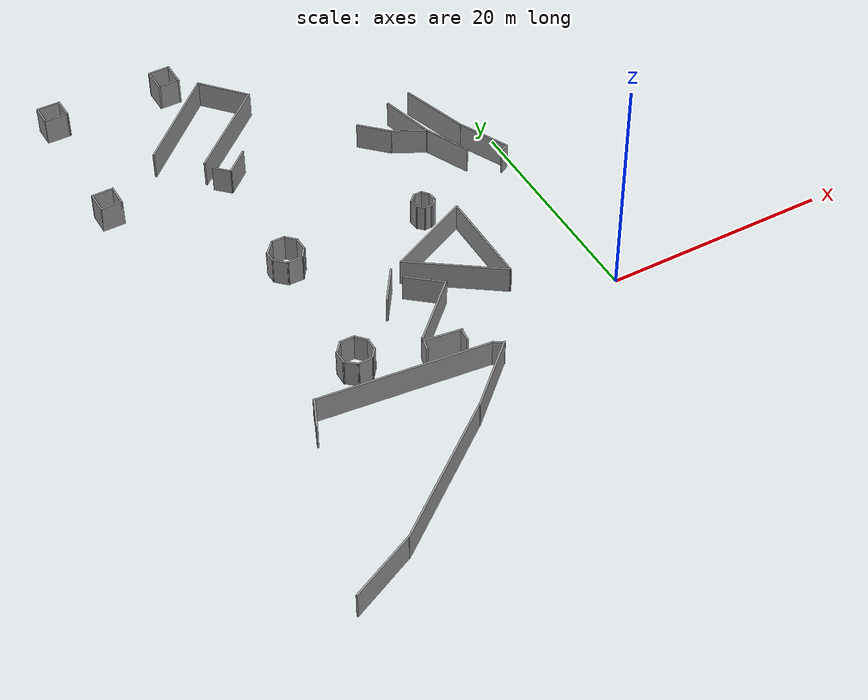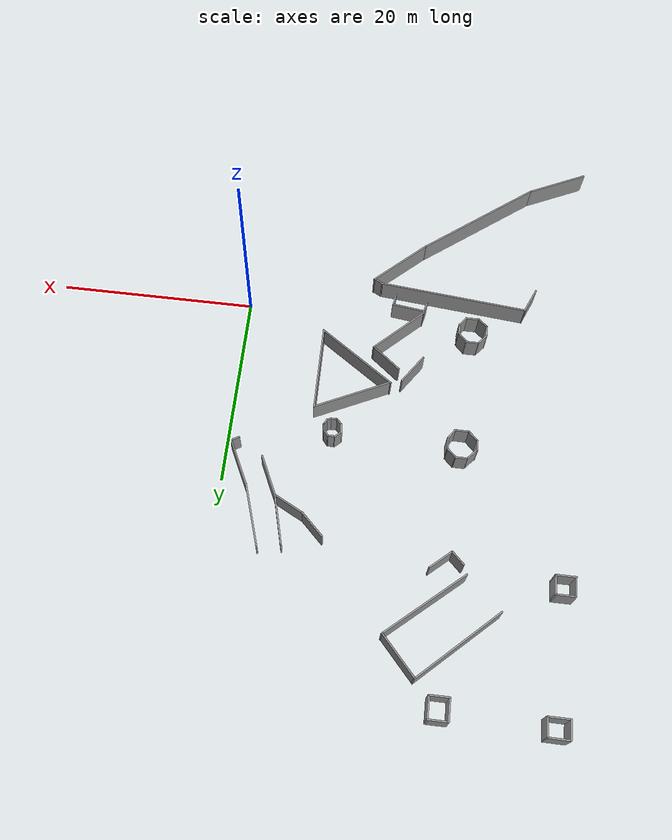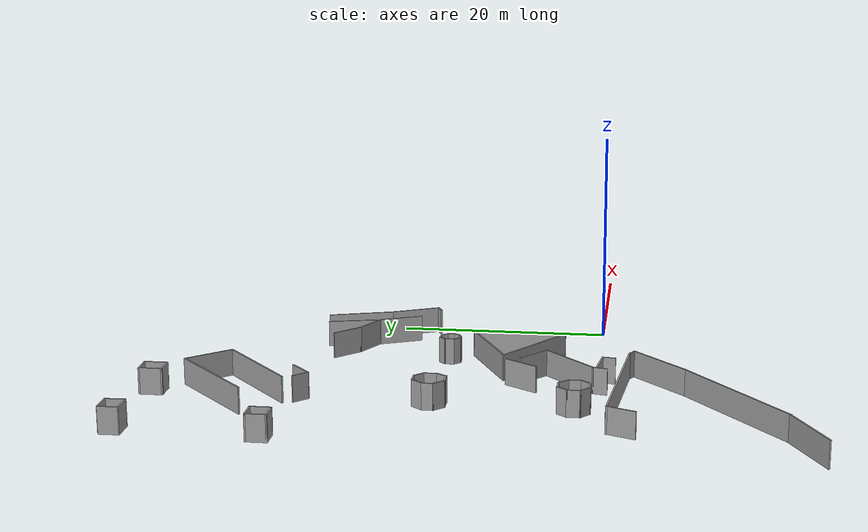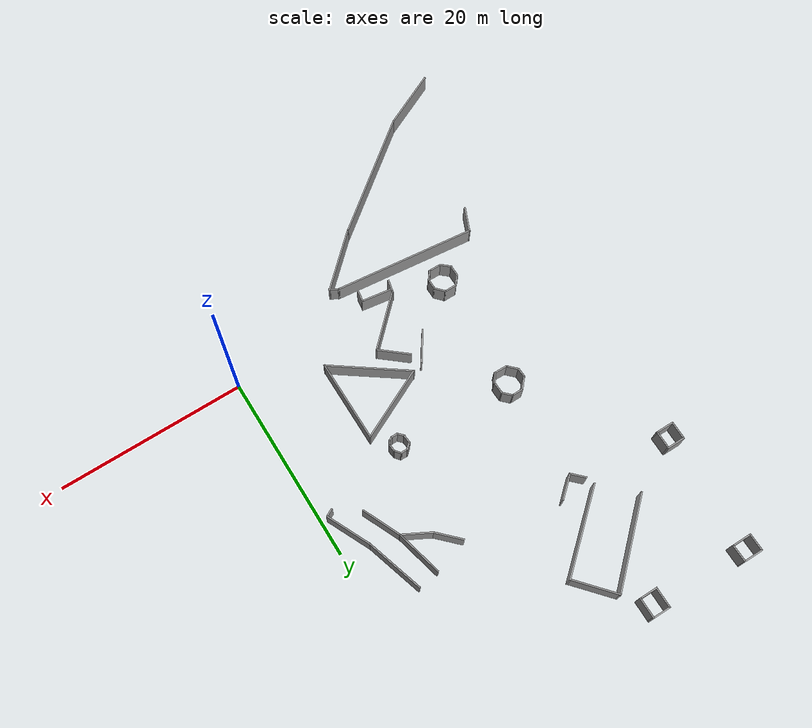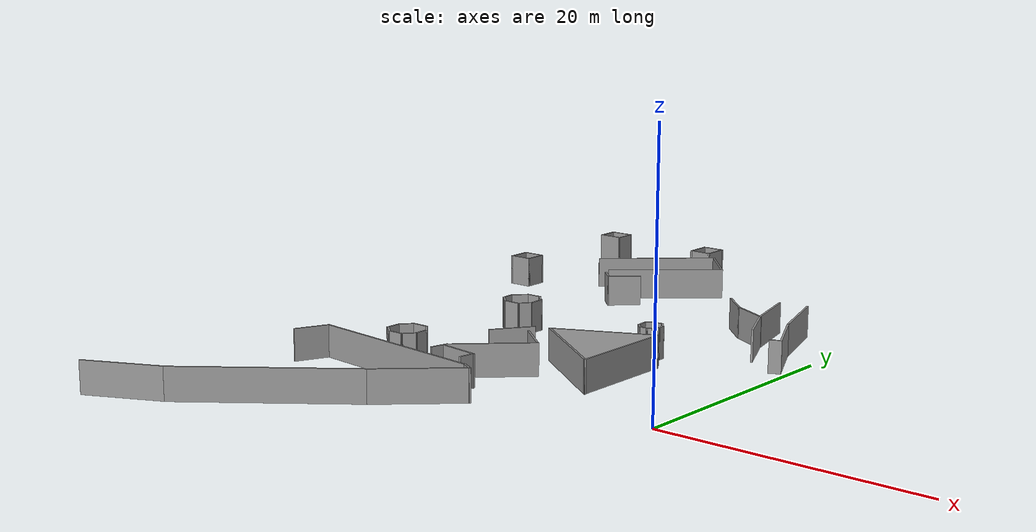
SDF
<sdf version="1.6">
 <model name="Area_B">
  <pose>-32.1242 10.8214 0 0 -0 0</pose>
  <link name="Wall_127">
   <collision name="Wall_127_Collision">
    <geometry><box><size>6.48208 0.15 2.5</size></box></geometry>
    <pose>0 0 1.25 0 -0 0</pose>
   </collision>
   <visual name="Wall_127_Visual">
    <pose>0 0 1.25 0 -0 0</pose>
    <geometry><box><size>6.48208 0.15 2.5</size></box></geometry>
    <material>
     <script><uri>file://media/materials/scripts/gazebo.material</uri><name>Gazebo/Grey</name></script>
     <ambient>1 1 1 1</ambient>
    </material>
    <meta><layer>0</layer></meta>
   </visual>
   <pose>0.452913 -28.8669 0 0 -0 0.451121</pose>
  </link>
  <link name="Wall_128">
   <collision name="Wall_128_Collision">
    <geometry><box><size>14.028 0.15 2.5</size></box></geometry>
    <pose>0 0 1.25 0 -0 0</pose>
   </collision>
   <visual name="Wall_128_Visual">
    <pose>0 0 1.25 0 -0 0</pose>
    <geometry><box><size>14.028 0.15 2.5</size></box></geometry>
    <material>
     <script><uri>file://media/materials/scripts/gazebo.material</uri><name>Gazebo/Grey</name></script>
     <ambient>1 1 1 1</ambient>
    </material>
    <meta><layer>0</layer></meta>
   </visual>
   <pose>8.76594 -23.2328 0 0 -0 0.664139</pose>
  </link>
  <link name="Wall_129">
   <collision name="Wall_129_Collision">
    <geometry><box><size>7.08355 0.15 2.5</size></box></geometry>
    <pose>0 0 1.25 0 -0 0</pose>
   </collision>
   <visual name="Wall_129_Visual">
    <pose>0 0 1.25 0 -0 0</pose>
    <geometry><box><size>7.08355 0.15 2.5</size></box></geometry>
    <material>
     <script><uri>file://media/materials/scripts/gazebo.material</uri><name>Gazebo/Grey</name></script>
     <ambient>1 1 1 1</ambient>
    </material>
    <meta><layer>0</layer></meta>
   </visual>
   <pose>16.7843 -16.5789 0 0 -0 0.755438</pose>
  </link>
  <link name="Wall_130">
   <collision name="Wall_130_Collision">
    <geometry><box><size>1.1013 0.15 2.5</size></box></geometry>
    <pose>0 0 1.25 0 -0 0</pose>
   </collision>
   <visual name="Wall_130_Visual">
    <pose>0 0 1.25 0 -0 0</pose>
    <geometry><box><size>1.1013 0.15 2.5</size></box></geometry>
    <material>
     <script><uri>file://media/materials/scripts/gazebo.material</uri><name>Gazebo/Grey</name></script>
     <ambient>1 1 1 1</ambient>
    </material>
    <meta><layer>0</layer></meta>
   </visual>
   <pose>18.8914 -14.0032 0 0 -0 2.63826</pose>
  </link>
  <link name="Wall_131">
   <collision name="Wall_131_Collision">
    <geometry><box><size>15.2444 0.15 2.5</size></box></geometry>
    <pose>0 0 1.25 0 -0 0</pose>
   </collision>
   <visual name="Wall_131_Visual">
    <pose>0 0 1.25 0 -0 0</pose>
    <geometry><box><size>15.2444 0.15 2.5</size></box></geometry>
    <material>
     <script><uri>file://media/materials/scripts/gazebo.material</uri><name>Gazebo/Grey</name></script>
     <ambient>1 1 1 1</ambient>
    </material>
    <meta><layer>0</layer></meta>
   </visual>
   <pose>10.9971 -13.0073 0 0 -0 3.03986</pose>
  </link>
  <link name="Wall_132">
   <collision name="Wall_132_Collision">
    <geometry><box><size>2.83891 0.15 2.5</size></box></geometry>
    <pose>0 0 1.25 0 -0 0</pose>
   </collision>
   <visual name="Wall_132_Visual">
    <pose>0 0 1.25 0 -0 0</pose>
    <geometry><box><size>2.83891 0.15 2.5</size></box></geometry>
    <material>
     <script><uri>file://media/materials/scripts/gazebo.material</uri><name>Gazebo/Grey</name></script>
     <ambient>1 1 1 1</ambient>
    </material>
    <meta><layer>0</layer></meta>
   </visual>
   <pose>2.98945 -13.4764 0 0 -0 -1.97606</pose>
  </link>
  <link name="Wall_144">
   <collision name="Wall_144_Collision">
    <geometry><box><size>3.57797 0.15 2.5</size></box></geometry>
    <pose>0 0 1.25 0 -0 0</pose>
   </collision>
   <visual name="Wall_144_Visual">
    <pose>0 0 1.25 0 -0 0</pose>
    <geometry><box><size>3.57797 0.15 2.5</size></box></geometry>
    <material>
     <script><uri>file://media/materials/scripts/gazebo.material</uri><name>Gazebo/Grey</name></script>
     <ambient>1 1 1 1</ambient>
    </material>
    <meta><layer>0</layer></meta>
   </visual>
   <pose>14.5292 -4.06296 0 0 -0 -2.1652</pose>
  </link>
  <link name="Wall_147">
   <collision name="Wall_147_Collision">
    <geometry><box><size>3.61382 0.15 2.5</size></box></geometry>
    <pose>0 0 1.25 0 -0 0</pose>
   </collision>
   <visual name="Wall_147_Visual">
    <pose>0 0 1.25 0 -0 0</pose>
    <geometry><box><size>3.61382 0.15 2.5</size></box></geometry>
    <material>
     <script><uri>file://media/materials/scripts/gazebo.material</uri><name>Gazebo/Grey</name></script>
     <ambient>1 1 1 1</ambient>
    </material>
    <meta><layer>0</layer></meta>
   </visual>
   <pose>17.2819 -5.0017 0 0 -0 -0.69159</pose>
  </link>
  <link name="Wall_148">
   <collision name="Wall_148_Collision">
    <geometry><box><size>6.69557 0.15 2.5</size></box></geometry>
    <pose>0 0 1.25 0 -0 0</pose>
   </collision>
   <visual name="Wall_148_Visual">
    <pose>0 0 1.25 0 -0 0</pose>
    <geometry><box><size>6.69557 0.15 2.5</size></box></geometry>
    <material>
     <script><uri>file://media/materials/scripts/gazebo.material</uri><name>Gazebo/Grey</name></script>
     <ambient>1 1 1 1</ambient>
    </material>
    <meta><layer>0</layer></meta>
   </visual>
   <pose>16.2943 -8.3819 0 0 -0 -2.37272</pose>
  </link>
  <link name="Wall_149">
   <collision name="Wall_149_Collision">
    <geometry><box><size>1.4258 0.15 2.5</size></box></geometry>
    <pose>0 0 1.25 0 -0 0</pose>
   </collision>
   <visual name="Wall_149_Visual">
    <pose>0 0 1.25 0 -0 0</pose>
    <geometry><box><size>1.4258 0.15 2.5</size></box></geometry>
    <material>
     <script><uri>file://media/materials/scripts/gazebo.material</uri><name>Gazebo/Grey</name></script>
     <ambient>1 1 1 1</ambient>
    </material>
    <meta><layer>0</layer></meta>
   </visual>
   <pose>13.7981 -11.2484 0 0 -0 -1.79868</pose>
  </link>
  <link name="Wall_154">
   <collision name="Wall_154_Collision">
    <geometry><box><size>3.35758 0.15 2.5</size></box></geometry>
    <pose>0 0 1.25 0 -0 0</pose>
   </collision>
   <visual name="Wall_154_Visual">
    <pose>0 0 1.25 0 -0 0</pose>
    <geometry><box><size>3.35758 0.15 2.5</size></box></geometry>
    <material>
     <script><uri>file://media/materials/scripts/gazebo.material</uri><name>Gazebo/Grey</name></script>
     <ambient>1 1 1 1</ambient>
    </material>
    <meta><layer>0</layer></meta>
   </visual>
   <pose>15.5179 -11.1505 0 0 -0 -0.136116</pose>
  </link>
  <link name="Wall_155">
   <collision name="Wall_155_Collision">
    <geometry><box><size>1.2865 0.15 2.5</size></box></geometry>
    <pose>0 0 1.25 0 -0 0</pose>
   </collision>
   <visual name="Wall_155_Visual">
    <pose>0 0 1.25 0 -0 0</pose>
    <geometry><box><size>1.2865 0.15 2.5</size></box></geometry>
    <material>
     <script><uri>file://media/materials/scripts/gazebo.material</uri><name>Gazebo/Grey</name></script>
     <ambient>1 1 1 1</ambient>
    </material>
    <meta><layer>0</layer></meta>
   </visual>
   <pose>17.0028 -11.9316 0 0 -0 -1.70058</pose>
  </link>
  <link name="Wall_158">
   <collision name="Wall_158_Collision">
    <geometry><box><size>8.1356 0.15 2.5</size></box></geometry>
    <pose>0 0 1.25 0 -0 0</pose>
   </collision>
   <visual name="Wall_158_Visual">
    <pose>0 0 1.25 0 -0 0</pose>
    <geometry><box><size>8.1356 0.15 2.5</size></box></geometry>
    <material>
     <script><uri>file://media/materials/scripts/gazebo.material</uri><name>Gazebo/Grey</name></script>
     <ambient>1 1 1 1</ambient>
    </material>
    <meta><layer>0</layer></meta>
   </visual>
   <pose>20.3182 -0.500974 0 0 -0 0.452021</pose>
  </link>
  <link name="Wall_159">
   <collision name="Wall_159_Collision">
    <geometry><box><size>8.83026 0.15 2.5</size></box></geometry>
    <pose>0 0 1.25 0 -0 0</pose>
   </collision>
   <visual name="Wall_159_Visual">
    <pose>0 0 1.25 0 -0 0</pose>
    <geometry><box><size>8.83026 0.15 2.5</size></box></geometry>
    <material>
     <script><uri>file://media/materials/scripts/gazebo.material</uri><name>Gazebo/Grey</name></script>
     <ambient>1 1 1 1</ambient>
    </material>
    <meta><layer>0</layer></meta>
   </visual>
   <pose>23.9185 -3.11471 0 0 -0 -1.56878</pose>
  </link>
  <link name="Wall_160">
   <collision name="Wall_160_Collision">
    <geometry><box><size>9.1362 0.15 2.5</size></box></geometry>
    <pose>0 0 1.25 0 -0 0</pose>
   </collision>
   <visual name="Wall_160_Visual">
    <pose>0 0 1.25 0 -0 0</pose>
    <geometry><box><size>9.1362 0.15 2.5</size></box></geometry>
    <material>
     <script><uri>file://media/materials/scripts/gazebo.material</uri><name>Gazebo/Grey</name></script>
     <ambient>1 1 1 1</ambient>
    </material>
    <meta><layer>0</layer></meta>
   </visual>
   <pose>20.2844 -4.84905 0 0 -0 2.52292</pose>
  </link>
  <link name="Wall_192">
   <collision name="Wall_192_Collision">
    <geometry><box><size>1.33063 0.15 2.5</size></box></geometry>
    <pose>0 0 1.25 0 -0 0</pose>
   </collision>
   <visual name="Wall_192_Visual">
    <pose>0 0 1.25 0 -0 0</pose>
    <geometry><box><size>1.33063 0.15 2.5</size></box></geometry>
    <material>
     <script><uri>file://media/materials/scripts/gazebo.material</uri><name>Gazebo/Grey</name></script>
     <ambient>1 1 1 1</ambient>
    </material>
    <meta><layer>0</layer></meta>
   </visual>
   <pose>8.74463 -7.81763 0 0 -0 0</pose>
  </link>
  <link name="Wall_193">
   <collision name="Wall_193_Collision">
    <geometry><box><size>1.31589 0.15 2.5</size></box></geometry>
    <pose>0 0 1.25 0 -0 0</pose>
   </collision>
   <visual name="Wall_193_Visual">
    <pose>0 0 1.25 0 -0 0</pose>
    <geometry><box><size>1.31589 0.15 2.5</size></box></geometry>
    <material>
     <script><uri>file://media/materials/scripts/gazebo.material</uri><name>Gazebo/Grey</name></script>
     <ambient>1 1 1 1</ambient>
    </material>
    <meta><layer>0</layer></meta>
   </visual>
   <pose>9.7317 -8.26476 0 0 -0 -0.822003</pose>
  </link>
  <link name="Wall_194">
   <collision name="Wall_194_Collision">
    <geometry><box><size>1.20977 0.15 2.5</size></box></geometry>
    <pose>0 0 1.25 0 -0 0</pose>
   </collision>
   <visual name="Wall_194_Visual">
    <pose>0 0 1.25 0 -0 0</pose>
    <geometry><box><size>1.20977 0.15 2.5</size></box></geometry>
    <material>
     <script><uri>file://media/materials/scripts/gazebo.material</uri><name>Gazebo/Grey</name></script>
     <ambient>1 1 1 1</ambient>
    </material>
    <meta><layer>0</layer></meta>
   </visual>
   <pose>10.1084 -9.22166 0 0 -0 -1.5708</pose>
  </link>
  <link name="Wall_195">
   <collision name="Wall_195_Collision">
    <geometry><box><size>1.1993 0.15 2.5</size></box></geometry>
    <pose>0 0 1.25 0 -0 0</pose>
   </collision>
   <visual name="Wall_195_Visual">
    <pose>0 0 1.25 0 -0 0</pose>
    <geometry><box><size>1.1993 0.15 2.5</size></box></geometry>
    <material>
     <script><uri>file://media/materials/scripts/gazebo.material</uri><name>Gazebo/Grey</name></script>
     <ambient>1 1 1 1</ambient>
    </material>
    <meta><layer>0</layer></meta>
   </visual>
   <pose>9.77986 -10.1807 0 0 -0 -2.24755</pose>
  </link>
  <link name="Wall_196">
   <collision name="Wall_196_Collision">
    <geometry><box><size>1.3908 0.15 2.5</size></box></geometry>
    <pose>0 0 1.25 0 -0 0</pose>
   </collision>
   <visual name="Wall_196_Visual">
    <pose>0 0 1.25 0 -0 0</pose>
    <geometry><box><size>1.3908 0.15 2.5</size></box></geometry>
    <material>
     <script><uri>file://media/materials/scripts/gazebo.material</uri><name>Gazebo/Grey</name></script>
     <ambient>1 1 1 1</ambient>
    </material>
    <meta><layer>0</layer></meta>
   </visual>
   <pose>8.85101 -10.5897 0 0 -0 3.14159</pose>
  </link>
  <link name="Wall_197">
   <collision name="Wall_197_Collision">
    <geometry><box><size>1.32941 0.15 2.5</size></box></geometry>
    <pose>0 0 1.25 0 -0 0</pose>
   </collision>
   <visual name="Wall_197_Visual">
    <pose>0 0 1.25 0 -0 0</pose>
    <geometry><box><size>1.32941 0.15 2.5</size></box></geometry>
    <material>
     <script><uri>file://media/materials/scripts/gazebo.material</uri><name>Gazebo/Grey</name></script>
     <ambient>1 1 1 1</ambient>
    </material>
    <meta><layer>0</layer></meta>
   </visual>
   <pose>7.78447 -10.2242 0 0 -0 2.42883</pose>
  </link>
  <link name="Wall_198">
   <collision name="Wall_198_Collision">
    <geometry><box><size>1.31034 0.15 2.5</size></box></geometry>
    <pose>0 0 1.25 0 -0 0</pose>
   </collision>
   <visual name="Wall_198_Visual">
    <pose>0 0 1.25 0 -0 0</pose>
    <geometry><box><size>1.31034 0.15 2.5</size></box></geometry>
    <material>
     <script><uri>file://media/materials/scripts/gazebo.material</uri><name>Gazebo/Grey</name></script>
     <ambient>1 1 1 1</ambient>
    </material>
    <meta><layer>0</layer></meta>
   </visual>
   <pose>7.33832 -9.27851 0 0 -0 1.5708</pose>
  </link>
  <link name="Wall_199">
   <collision name="Wall_199_Collision">
    <geometry><box><size>1.28988 0.15 2.5</size></box></geometry>
    <pose>0 0 1.25 0 -0 0</pose>
   </collision>
   <visual name="Wall_199_Visual">
    <pose>0 0 1.25 0 -0 0</pose>
    <geometry><box><size>1.28988 0.15 2.5</size></box></geometry>
    <material>
     <script><uri>file://media/materials/scripts/gazebo.material</uri><name>Gazebo/Grey</name></script>
     <ambient>1 1 1 1</ambient>
    </material>
    <meta><layer>0</layer></meta>
   </visual>
   <pose>7.71986 -8.25765 0 0 -0 0.883907</pose>
  </link>
  <link name="Wall_202">
   <collision name="Wall_202_Collision">
    <geometry><box><size>1.25 0.15 2.5</size></box></geometry>
    <pose>0 0 1.25 0 -0 0</pose>
   </collision>
   <visual name="Wall_202_Visual">
    <pose>0 0 1.25 0 -0 0</pose>
    <geometry><box><size>1.25 0.15 2.5</size></box></geometry>
    <material>
     <script><uri>file://media/materials/scripts/gazebo.material</uri><name>Gazebo/Grey</name></script>
     <ambient>1 1 1 1</ambient>
    </material>
    <meta><layer>0</layer></meta>
   </visual>
   <pose>9.1469 5.05506 0 0 -0 0</pose>
  </link>
  <link name="Wall_203">
   <collision name="Wall_203_Collision">
    <geometry><box><size>1.25 0.15 2.5</size></box></geometry>
    <pose>0 0 1.25 0 -0 0</pose>
   </collision>
   <visual name="Wall_203_Visual">
    <pose>0 0 1.25 0 -0 0</pose>
    <geometry><box><size>1.25 0.15 2.5</size></box></geometry>
    <material>
     <script><uri>file://media/materials/scripts/gazebo.material</uri><name>Gazebo/Grey</name></script>
     <ambient>1 1 1 1</ambient>
    </material>
    <meta><layer>0</layer></meta>
   </visual>
   <pose>10.0858 4.66615 0 0 -0 -0.785398</pose>
  </link>
  <link name="Wall_204">
   <collision name="Wall_204_Collision">
    <geometry><box><size>1.35124 0.15 2.5</size></box></geometry>
    <pose>0 0 1.25 0 -0 0</pose>
   </collision>
   <visual name="Wall_204_Visual">
    <pose>0 0 1.25 0 -0 0</pose>
    <geometry><box><size>1.35124 0.15 2.5</size></box></geometry>
    <material>
     <script><uri>file://media/materials/scripts/gazebo.material</uri><name>Gazebo/Grey</name></script>
     <ambient>1 1 1 1</ambient>
    </material>
    <meta><layer>0</layer></meta>
   </visual>
   <pose>10.4948 3.67695 0 0 -0 -1.5373</pose>
  </link>
  <link name="Wall_205">
   <collision name="Wall_205_Collision">
    <geometry><box><size>1.23106 0.15 2.5</size></box></geometry>
    <pose>0 0 1.25 0 -0 0</pose>
   </collision>
   <visual name="Wall_205_Visual">
    <pose>0 0 1.25 0 -0 0</pose>
    <geometry><box><size>1.23106 0.15 2.5</size></box></geometry>
    <material>
     <script><uri>file://media/materials/scripts/gazebo.material</uri><name>Gazebo/Grey</name></script>
     <ambient>1 1 1 1</ambient>
    </material>
    <meta><layer>0</layer></meta>
   </visual>
   <pose>10.1897 2.63053 0 0 -0 -2.17072</pose>
  </link>
  <link name="Wall_206">
   <collision name="Wall_206_Collision">
    <geometry><box><size>1.50015 0.15 2.5</size></box></geometry>
    <pose>0 0 1.25 0 -0 0</pose>
   </collision>
   <visual name="Wall_206_Visual">
    <pose>0 0 1.25 0 -0 0</pose>
    <geometry><box><size>1.50015 0.15 2.5</size></box></geometry>
    <material>
     <script><uri>file://media/materials/scripts/gazebo.material</uri><name>Gazebo/Grey</name></script>
     <ambient>1 1 1 1</ambient>
    </material>
    <meta><layer>0</layer></meta>
   </visual>
   <pose>9.2296 2.19444 0 0 -0 3.12669</pose>
  </link>
  <link name="Wall_207">
   <collision name="Wall_207_Collision">
    <geometry><box><size>1.41467 0.15 2.5</size></box></geometry>
    <pose>0 0 1.25 0 -0 0</pose>
   </collision>
   <visual name="Wall_207_Visual">
    <pose>0 0 1.25 0 -0 0</pose>
    <geometry><box><size>1.41467 0.15 2.5</size></box></geometry>
    <material>
     <script><uri>file://media/materials/scripts/gazebo.material</uri><name>Gazebo/Grey</name></script>
     <ambient>1 1 1 1</ambient>
    </material>
    <meta><layer>0</layer></meta>
   </visual>
   <pose>8.10748 2.63151 0 0 -0 2.35619</pose>
  </link>
  <link name="Wall_208">
   <collision name="Wall_208_Collision">
    <geometry><box><size>1.08995 0.15 2.5</size></box></geometry>
    <pose>0 0 1.25 0 -0 0</pose>
   </collision>
   <visual name="Wall_208_Visual">
    <pose>0 0 1.25 0 -0 0</pose>
    <geometry><box><size>1.08995 0.15 2.5</size></box></geometry>
    <material>
     <script><uri>file://media/materials/scripts/gazebo.material</uri><name>Gazebo/Grey</name></script>
     <ambient>1 1 1 1</ambient>
    </material>
    <meta><layer>0</layer></meta>
   </visual>
   <pose>7.64024 3.56829 0 0 -0 1.61361</pose>
  </link>
  <link name="Wall_209">
   <collision name="Wall_209_Collision">
    <geometry><box><size>1.45791 0.15 2.5</size></box></geometry>
    <pose>0 0 1.25 0 -0 0</pose>
   </collision>
   <visual name="Wall_209_Visual">
    <pose>0 0 1.25 0 -0 0</pose>
    <geometry><box><size>1.45791 0.15 2.5</size></box></geometry>
    <material>
     <script><uri>file://media/materials/scripts/gazebo.material</uri><name>Gazebo/Grey</name></script>
     <ambient>1 1 1 1</ambient>
    </material>
    <meta><layer>0</layer></meta>
   </visual>
   <pose>8.0715 4.52944 0 0 -0 0.85069</pose>
  </link>
  <link name="Wall_212">
   <collision name="Wall_212_Collision">
    <geometry><box><size>2 0.15 2.5</size></box></geometry>
    <pose>0 0 1.25 0 -0 0</pose>
   </collision>
   <visual name="Wall_212_Visual">
    <pose>0 0 1.25 0 -0 0</pose>
    <geometry><box><size>2 0.15 2.5</size></box></geometry>
    <material>
     <script><uri>file://media/materials/scripts/gazebo.material</uri><name>Gazebo/Grey</name></script>
     <ambient>1 1 1 1</ambient>
    </material>
    <meta><layer>0</layer></meta>
   </visual>
   <pose>-2.05802 16.6093 0 0 -0 -1.5708</pose>
  </link>
  <link name="Wall_213">
   <collision name="Wall_213_Collision">
    <geometry><box><size>2 0.15 2.5</size></box></geometry>
    <pose>0 0 1.25 0 -0 0</pose>
   </collision>
   <visual name="Wall_213_Visual">
    <pose>0 0 1.25 0 -0 0</pose>
    <geometry><box><size>2 0.15 2.5</size></box></geometry>
    <material>
     <script><uri>file://media/materials/scripts/gazebo.material</uri><name>Gazebo/Grey</name></script>
     <ambient>1 1 1 1</ambient>
    </material>
    <meta><layer>0</layer></meta>
   </visual>
   <pose>-1.13302 15.6843 0 0 -0 0</pose>
  </link>
  <link name="Wall_214">
   <collision name="Wall_214_Collision">
    <geometry><box><size>2 0.15 2.5</size></box></geometry>
    <pose>0 0 1.25 0 -0 0</pose>
   </collision>
   <visual name="Wall_214_Visual">
    <pose>0 0 1.25 0 -0 0</pose>
    <geometry><box><size>2 0.15 2.5</size></box></geometry>
    <material>
     <script><uri>file://media/materials/scripts/gazebo.material</uri><name>Gazebo/Grey</name></script>
     <ambient>1 1 1 1</ambient>
    </material>
    <meta><layer>0</layer></meta>
   </visual>
   <pose>-0.208026 16.6093 0 0 -0 1.5708</pose>
  </link>
  <link name="Wall_215">
   <collision name="Wall_215_Collision">
    <geometry><box><size>2 0.15 2.5</size></box></geometry>
    <pose>0 0 1.25 0 -0 0</pose>
   </collision>
   <visual name="Wall_215_Visual">
    <pose>0 0 1.25 0 -0 0</pose>
    <geometry><box><size>2 0.15 2.5</size></box></geometry>
    <material>
     <script><uri>file://media/materials/scripts/gazebo.material</uri><name>Gazebo/Grey</name></script>
     <ambient>1 1 1 1</ambient>
    </material>
    <meta><layer>0</layer></meta>
   </visual>
   <pose>-1.13302 17.5343 0 0 -0 3.14159</pose>
  </link>
  <link name="Wall_218">
   <collision name="Wall_218_Collision">
    <geometry><box><size>1.89001 0.15 2.5</size></box></geometry>
    <pose>0 0 1.25 0 -0 0</pose>
   </collision>
   <visual name="Wall_218_Visual">
    <pose>0 0 1.25 0 -0 0</pose>
    <geometry><box><size>1.89001 0.15 2.5</size></box></geometry>
    <material>
     <script><uri>file://media/materials/scripts/gazebo.material</uri><name>Gazebo/Grey</name></script>
     <ambient>1 1 1 1</ambient>
    </material>
    <meta><layer>0</layer></meta>
   </visual>
   <pose>-1.76944 29.3796 0 0 -0 -1.56074</pose>
  </link>
  <link name="Wall_219">
   <collision name="Wall_219_Collision">
    <geometry><box><size>2.16255 0.15 2.5</size></box></geometry>
    <pose>0 0 1.25 0 -0 0</pose>
   </collision>
   <visual name="Wall_219_Visual">
    <pose>0 0 1.25 0 -0 0</pose>
    <geometry><box><size>2.16255 0.15 2.5</size></box></geometry>
    <material>
     <script><uri>file://media/materials/scripts/gazebo.material</uri><name>Gazebo/Grey</name></script>
     <ambient>1 1 1 1</ambient>
    </material>
    <meta><layer>0</layer></meta>
   </visual>
   <pose>-0.75442 28.4922 0 0 -0 0</pose>
  </link>
  <link name="Wall_220">
   <collision name="Wall_220_Collision">
    <geometry><box><size>1.90262 0.15 2.5</size></box></geometry>
    <pose>0 0 1.25 0 -0 0</pose>
   </collision>
   <visual name="Wall_220_Visual">
    <pose>0 0 1.25 0 -0 0</pose>
    <geometry><box><size>1.90262 0.15 2.5</size></box></geometry>
    <material>
     <script><uri>file://media/materials/scripts/gazebo.material</uri><name>Gazebo/Grey</name></script>
     <ambient>1 1 1 1</ambient>
    </material>
    <meta><layer>0</layer></meta>
   </visual>
   <pose>0.251855 29.3683 0 0 -0 1.59076</pose>
  </link>
  <link name="Wall_221">
   <collision name="Wall_221_Collision">
    <geometry><box><size>2.13277 0.15 2.5</size></box></geometry>
    <pose>0 0 1.25 0 -0 0</pose>
   </collision>
   <visual name="Wall_221_Visual">
    <pose>0 0 1.25 0 -0 0</pose>
    <geometry><box><size>2.13277 0.15 2.5</size></box></geometry>
    <material>
     <script><uri>file://media/materials/scripts/gazebo.material</uri><name>Gazebo/Grey</name></script>
     <ambient>1 1 1 1</ambient>
    </material>
    <meta><layer>0</layer></meta>
   </visual>
   <pose>-0.756999 30.2679 0 0 -0 3.13562</pose>
  </link>
  <link name="Wall_224">
   <collision name="Wall_224_Collision">
    <geometry><box><size>2.25 0.15 2.5</size></box></geometry>
    <pose>0 0 1.25 0 -0 0</pose>
   </collision>
   <visual name="Wall_224_Visual">
    <pose>0 0 1.25 0 -0 0</pose>
    <geometry><box><size>2.25 0.15 2.5</size></box></geometry>
    <material>
     <script><uri>file://media/materials/scripts/gazebo.material</uri><name>Gazebo/Grey</name></script>
     <ambient>1 1 1 1</ambient>
    </material>
    <meta><layer>0</layer></meta>
   </visual>
   <pose>8.8033 28.9198 0 0 -0 -1.5708</pose>
  </link>
  <link name="Wall_225">
   <collision name="Wall_225_Collision">
    <geometry><box><size>2 0.15 2.5</size></box></geometry>
    <pose>0 0 1.25 0 -0 0</pose>
   </collision>
   <visual name="Wall_225_Visual">
    <pose>0 0 1.25 0 -0 0</pose>
    <geometry><box><size>2 0.15 2.5</size></box></geometry>
    <material>
     <script><uri>file://media/materials/scripts/gazebo.material</uri><name>Gazebo/Grey</name></script>
     <ambient>1 1 1 1</ambient>
    </material>
    <meta><layer>0</layer></meta>
   </visual>
   <pose>9.7283 27.8698 0 0 -0 0</pose>
  </link>
  <link name="Wall_226">
   <collision name="Wall_226_Collision">
    <geometry><box><size>2.25 0.15 2.5</size></box></geometry>
    <pose>0 0 1.25 0 -0 0</pose>
   </collision>
   <visual name="Wall_226_Visual">
    <pose>0 0 1.25 0 -0 0</pose>
    <geometry><box><size>2.25 0.15 2.5</size></box></geometry>
    <material>
     <script><uri>file://media/materials/scripts/gazebo.material</uri><name>Gazebo/Grey</name></script>
     <ambient>1 1 1 1</ambient>
    </material>
    <meta><layer>0</layer></meta>
   </visual>
   <pose>10.6533 28.9198 0 0 -0 1.5708</pose>
  </link>
  <link name="Wall_227">
   <collision name="Wall_227_Collision">
    <geometry><box><size>2 0.15 2.5</size></box></geometry>
    <pose>0 0 1.25 0 -0 0</pose>
   </collision>
   <visual name="Wall_227_Visual">
    <pose>0 0 1.25 0 -0 0</pose>
    <geometry><box><size>2 0.15 2.5</size></box></geometry>
    <material>
     <script><uri>file://media/materials/scripts/gazebo.material</uri><name>Gazebo/Grey</name></script>
     <ambient>1 1 1 1</ambient>
    </material>
    <meta><layer>0</layer></meta>
   </visual>
   <pose>9.7283 29.9698 0 0 -0 3.14159</pose>
  </link>
  <link name="Wall_229">
   <collision name="Wall_229_Collision">
    <geometry><box><size>10.2518 0.15 2.5</size></box></geometry>
    <pose>0 0 1.25 0 -0 0</pose>
   </collision>
   <visual name="Wall_229_Visual">
    <pose>0 0 1.25 0 -0 0</pose>
    <geometry><box><size>10.2518 0.15 2.5</size></box></geometry>
    <material>
     <script><uri>file://media/materials/scripts/gazebo.material</uri><name>Gazebo/Grey</name></script>
     <ambient>1 1 1 1</ambient>
    </material>
    <meta><layer>0</layer></meta>
   </visual>
   <pose>8.30177 23.1693 0 0 -0 0.745967</pose>
  </link>
  <link name="Wall_230">
   <collision name="Wall_230_Collision">
    <geometry><box><size>4.97701 0.15 2.5</size></box></geometry>
    <pose>0 0 1.25 0 -0 0</pose>
   </collision>
   <visual name="Wall_230_Visual">
    <pose>0 0 1.25 0 -0 0</pose>
    <geometry><box><size>4.97701 0.15 2.5</size></box></geometry>
    <material>
     <script><uri>file://media/materials/scripts/gazebo.material</uri><name>Gazebo/Grey</name></script>
     <ambient>1 1 1 1</ambient>
    </material>
    <meta><layer>0</layer></meta>
   </visual>
   <pose>13.6091 24.7682 0 0 -0 -0.847313</pose>
  </link>
  <link name="Wall_231">
   <collision name="Wall_231_Collision">
    <geometry><box><size>9.78614 0.15 2.5</size></box></geometry>
    <pose>0 0 1.25 0 -0 0</pose>
   </collision>
   <visual name="Wall_231_Visual">
    <pose>0 0 1.25 0 -0 0</pose>
    <geometry><box><size>9.78614 0.15 2.5</size></box></geometry>
    <material>
     <script><uri>file://media/materials/scripts/gazebo.material</uri><name>Gazebo/Grey</name></script>
     <ambient>1 1 1 1</ambient>
    </material>
    <meta><layer>0</layer></meta>
   </visual>
   <pose>11.5924 19.7964 0 0 -0 -2.42547</pose>
  </link>
  <link name="Wall_234">
   <collision name="Wall_234_Collision">
    <geometry><box><size>1.75 0.15 2.5</size></box></geometry>
    <pose>0 0 1.25 0 -0 0</pose>
   </collision>
   <visual name="Wall_234_Visual">
    <pose>0 0 1.25 0 -0 0</pose>
    <geometry><box><size>1.75 0.15 2.5</size></box></geometry>
    <material>
     <script><uri>file://media/materials/scripts/gazebo.material</uri><name>Gazebo/Grey</name></script>
     <ambient>1 1 1 1</ambient>
    </material>
    <meta><layer>0</layer></meta>
   </visual>
   <pose>8.85832 15.1519 0 0 -0 -0.785398</pose>
  </link>
  <link name="Wall_235">
   <collision name="Wall_235_Collision">
    <geometry><box><size>2.78151 0.15 2.5</size></box></geometry>
    <pose>0 0 1.25 0 -0 0</pose>
   </collision>
   <visual name="Wall_235_Visual">
    <pose>0 0 1.25 0 -0 0</pose>
    <geometry><box><size>2.78151 0.15 2.5</size></box></geometry>
    <material>
     <script><uri>file://media/materials/scripts/gazebo.material</uri><name>Gazebo/Grey</name></script>
     <ambient>1 1 1 1</ambient>
    </material>
    <meta><layer>0</layer></meta>
   </visual>
   <pose>10.4101 15.4573 0 0 -0 0.723556</pose>
  </link>
  <link name="Wall_287">
   <collision name="Wall_287_Collision">
    <geometry><box><size>0.796102 0.15 2.5</size></box></geometry>
    <pose>0 0 1.25 0 -0 0</pose>
   </collision>
   <visual name="Wall_287_Visual">
    <pose>0 0 1.25 0 -0 0</pose>
    <geometry><box><size>0.796102 0.15 2.5</size></box></geometry>
    <material>
     <script><uri>file://media/materials/scripts/gazebo.material</uri><name>Gazebo/Grey</name></script>
     <ambient>1 1 1 1</ambient>
    </material>
    <meta><layer>0</layer></meta>
   </visual>
   <pose>21.8919 4.23387 0 0 -0 0.0178</pose>
  </link>
  <link name="Wall_288">
   <collision name="Wall_288_Collision">
    <geometry><box><size>0.875676 0.15 2.5</size></box></geometry>
    <pose>0 0 1.25 0 -0 0</pose>
   </collision>
   <visual name="Wall_288_Visual">
    <pose>0 0 1.25 0 -0 0</pose>
    <geometry><box><size>0.875676 0.15 2.5</size></box></geometry>
    <material>
     <script><uri>file://media/materials/scripts/gazebo.material</uri><name>Gazebo/Grey</name></script>
     <ambient>1 1 1 1</ambient>
    </material>
    <meta><layer>0</layer></meta>
   </visual>
   <pose>22.4328 3.95849 0 0 -0 -0.886421</pose>
  </link>
  <link name="Wall_289">
   <collision name="Wall_289_Collision">
    <geometry><box><size>0.802854 0.15 2.5</size></box></geometry>
    <pose>0 0 1.25 0 -0 0</pose>
   </collision>
   <visual name="Wall_289_Visual">
    <pose>0 0 1.25 0 -0 0</pose>
    <geometry><box><size>0.802854 0.15 2.5</size></box></geometry>
    <material>
     <script><uri>file://media/materials/scripts/gazebo.material</uri><name>Gazebo/Grey</name></script>
     <ambient>1 1 1 1</ambient>
    </material>
    <meta><layer>0</layer></meta>
   </visual>
   <pose>22.6996 3.34158 0 0 -0 -1.45598</pose>
  </link>
  <link name="Wall_290">
   <collision name="Wall_290_Collision">
    <geometry><box><size>0.650569 0.15 2.5</size></box></geometry>
    <pose>0 0 1.25 0 -0 0</pose>
   </collision>
   <visual name="Wall_290_Visual">
    <pose>0 0 1.25 0 -0 0</pose>
    <geometry><box><size>0.650569 0.15 2.5</size></box></geometry>
    <material>
     <script><uri>file://media/materials/scripts/gazebo.material</uri><name>Gazebo/Grey</name></script>
     <ambient>1 1 1 1</ambient>
    </material>
    <meta><layer>0</layer></meta>
   </visual>
   <pose>22.6076 2.79652 0 0 -0 -2.06127</pose>
  </link>
  <link name="Wall_291">
   <collision name="Wall_291_Collision">
    <geometry><box><size>0.576542 0.15 2.5</size></box></geometry>
    <pose>0 0 1.25 0 -0 0</pose>
   </collision>
   <visual name="Wall_291_Visual">
    <pose>0 0 1.25 0 -0 0</pose>
    <geometry><box><size>0.576542 0.15 2.5</size></box></geometry>
    <material>
     <script><uri>file://media/materials/scripts/gazebo.material</uri><name>Gazebo/Grey</name></script>
     <ambient>1 1 1 1</ambient>
    </material>
    <meta><layer>0</layer></meta>
   </visual>
   <pose>22.3094 2.48249 0 0 -0 -2.68907</pose>
  </link>
  <link name="Wall_292">
   <collision name="Wall_292_Collision">
    <geometry><box><size>0.764083 0.15 2.5</size></box></geometry>
    <pose>0 0 1.25 0 -0 0</pose>
   </collision>
   <visual name="Wall_292_Visual">
    <pose>0 0 1.25 0 -0 0</pose>
    <geometry><box><size>0.764083 0.15 2.5</size></box></geometry>
    <material>
     <script><uri>file://media/materials/scripts/gazebo.material</uri><name>Gazebo/Grey</name></script>
     <ambient>1 1 1 1</ambient>
    </material>
    <meta><layer>0</layer></meta>
   </visual>
   <pose>21.822 2.38635 0 0 -0 -3.13216</pose>
  </link>
  <link name="Wall_293">
   <collision name="Wall_293_Collision">
    <geometry><box><size>0.851702 0.15 2.5</size></box></geometry>
    <pose>0 0 1.25 0 -0 0</pose>
   </collision>
   <visual name="Wall_293_Visual">
    <pose>0 0 1.25 0 -0 0</pose>
    <geometry><box><size>0.851702 0.15 2.5</size></box></geometry>
    <material>
     <script><uri>file://media/materials/scripts/gazebo.material</uri><name>Gazebo/Grey</name></script>
     <ambient>1 1 1 1</ambient>
    </material>
    <meta><layer>0</layer></meta>
   </visual>
   <pose>21.2724 2.62545 0 0 -0 2.33414</pose>
  </link>
  <link name="Wall_294">
   <collision name="Wall_294_Collision">
    <geometry><box><size>0.991334 0.15 2.5</size></box></geometry>
    <pose>0 0 1.25 0 -0 0</pose>
   </collision>
   <visual name="Wall_294_Visual">
    <pose>0 0 1.25 0 -0 0</pose>
    <geometry><box><size>0.991334 0.15 2.5</size></box></geometry>
    <material>
     <script><uri>file://media/materials/scripts/gazebo.material</uri><name>Gazebo/Grey</name></script>
     <ambient>1 1 1 1</ambient>
    </material>
    <meta><layer>0</layer></meta>
   </visual>
   <pose>20.9954 3.3097 0 0 -0 1.6529</pose>
  </link>
  <link name="Wall_295">
   <collision name="Wall_295_Collision">
    <geometry><box><size>0.92236 0.15 2.5</size></box></geometry>
    <pose>0 0 1.25 0 -0 0</pose>
   </collision>
   <visual name="Wall_295_Visual">
    <pose>0 0 1.25 0 -0 0</pose>
    <geometry><box><size>0.92236 0.15 2.5</size></box></geometry>
    <material>
     <script><uri>file://media/materials/scripts/gazebo.material</uri><name>Gazebo/Grey</name></script>
     <ambient>1 1 1 1</ambient>
    </material>
    <meta><layer>0</layer></meta>
   </visual>
   <pose>21.2455 4.00148 0 0 -0 0.742215</pose>
  </link>
  <link name="Wall_299">
   <collision name="Wall_299_Collision">
    <geometry><box><size>3.17067 0.15 2.5</size></box></geometry>
    <pose>0 0 1.25 0 -0 0</pose>
   </collision>
   <visual name="Wall_299_Visual">
    <pose>0 0 1.25 0 -0 0</pose>
    <geometry><box><size>3.17067 0.15 2.5</size></box></geometry>
    <material>
     <script><uri>file://media/materials/scripts/gazebo.material</uri><name>Gazebo/Grey</name></script>
     <ambient>1 1 1 1</ambient>
    </material>
    <meta><layer>0</layer></meta>
   </visual>
   <pose>22.6859 13.4682 0 0 -0 -0.785398</pose>
  </link>
  <link name="Wall_300">
   <collision name="Wall_300_Collision">
    <geometry><box><size>3.29915 0.15 2.5</size></box></geometry>
    <pose>0 0 1.25 0 -0 0</pose>
   </collision>
   <visual name="Wall_300_Visual">
    <pose>0 0 1.25 0 -0 0</pose>
    <geometry><box><size>3.29915 0.15 2.5</size></box></geometry>
    <material>
     <script><uri>file://media/materials/scripts/gazebo.material</uri><name>Gazebo/Grey</name></script>
     <ambient>1 1 1 1</ambient>
    </material>
    <meta><layer>0</layer></meta>
   </visual>
   <pose>25.1465 11.6855 0 0 -0 -0.485497</pose>
  </link>
  <link name="Wall_303">
   <collision name="Wall_303_Collision">
    <geometry><box><size>5.09018 0.15 2.5</size></box></geometry>
    <pose>0 0 1.25 0 -0 0</pose>
   </collision>
   <visual name="Wall_303_Visual">
    <pose>0 0 1.25 0 -0 0</pose>
    <geometry><box><size>5.09018 0.15 2.5</size></box></geometry>
    <material>
     <script><uri>file://media/materials/scripts/gazebo.material</uri><name>Gazebo/Grey</name></script>
     <ambient>1 1 1 1</ambient>
    </material>
    <meta><layer>0</layer></meta>
   </visual>
   <pose>25.9391 13.3469 0 0 -0 -1.3254</pose>
  </link>
  <link name="Wall_304">
   <collision name="Wall_304_Collision">
    <geometry><box><size>4.37802 0.15 2.5</size></box></geometry>
    <pose>0 0 1.25 0 -0 0</pose>
   </collision>
   <visual name="Wall_304_Visual">
    <pose>0 0 1.25 0 -0 0</pose>
    <geometry><box><size>4.37802 0.15 2.5</size></box></geometry>
    <material>
     <script><uri>file://media/materials/scripts/gazebo.material</uri><name>Gazebo/Grey</name></script>
     <ambient>1 1 1 1</ambient>
    </material>
    <meta><layer>0</layer></meta>
   </visual>
   <pose>27.4155 9.02694 0 0 -0 -1.14338</pose>
  </link>
  <link name="Wall_307">
   <collision name="Wall_307_Collision">
    <geometry><box><size>6.37627 0.15 2.5</size></box></geometry>
    <pose>0 0 1.25 0 -0 0</pose>
   </collision>
   <visual name="Wall_307_Visual">
    <pose>0 0 1.25 0 -0 0</pose>
    <geometry><box><size>6.37627 0.15 2.5</size></box></geometry>
    <material>
     <script><uri>file://media/materials/scripts/gazebo.material</uri><name>Gazebo/Grey</name></script>
     <ambient>1 1 1 1</ambient>
    </material>
    <meta><layer>0</layer></meta>
   </visual>
   <pose>28.5254 13.1289 0 0 -0 -1.27295</pose>
  </link>
  <link name="Wall_308">
   <collision name="Wall_308_Collision">
    <geometry><box><size>4.94035 0.15 2.5</size></box></geometry>
    <pose>0 0 1.25 0 -0 0</pose>
   </collision>
   <visual name="Wall_308_Visual">
    <pose>0 0 1.25 0 -0 0</pose>
    <geometry><box><size>4.94035 0.15 2.5</size></box></geometry>
    <material>
     <script><uri>file://media/materials/scripts/gazebo.material</uri><name>Gazebo/Grey</name></script>
     <ambient>1 1 1 1</ambient>
    </material>
    <meta><layer>0</layer></meta>
   </visual>
   <pose>30.487 7.96936 0 0 -0 -1.12724</pose>
  </link>
  <link name="Wall_309">
   <collision name="Wall_309_Collision">
    <geometry><box><size>0.942054 0.15 2.5</size></box></geometry>
    <pose>0 0 1.25 0 -0 0</pose>
   </collision>
   <visual name="Wall_309_Visual">
    <pose>0 0 1.25 0 -0 0</pose>
    <geometry><box><size>0.942054 0.15 2.5</size></box></geometry>
    <material>
     <script><uri>file://media/materials/scripts/gazebo.material</uri><name>Gazebo/Grey</name></script>
     <ambient>1 1 1 1</ambient>
    </material>
    <meta><layer>0</layer></meta>
   </visual>
   <pose>31.1662 5.59808 0 0 -0 -2.6476</pose>
  </link>
  <static>1</static>
 </model>
</sdf>
